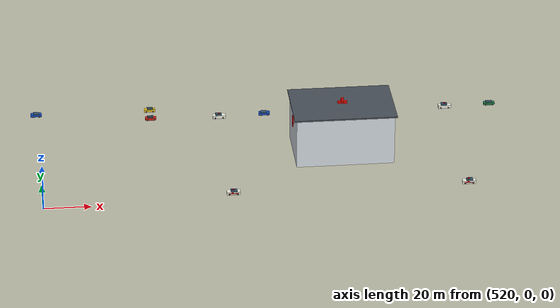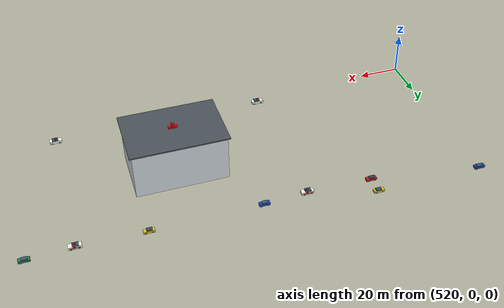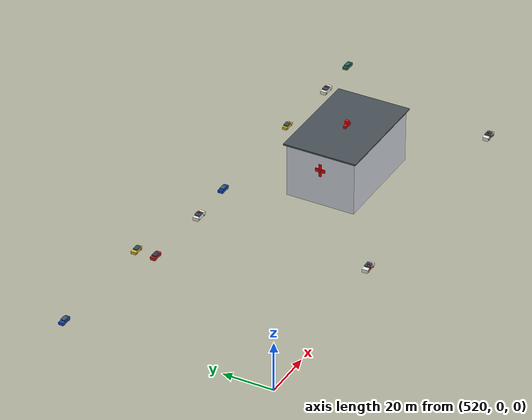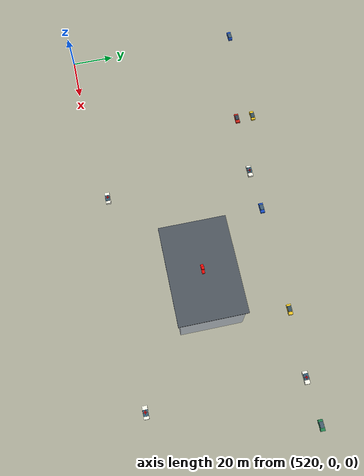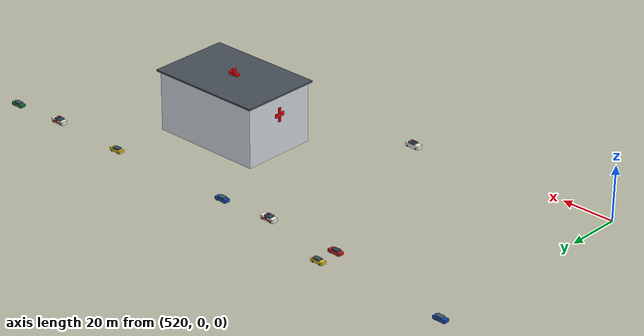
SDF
<sdf version="1.9">
 <world name="smart_city">
  <model name="apollo_district_hospital">
   <static>true</static>
   <pose>650 40 0 0 0 0</pose>
   <link name="building">
    <collision name="structure">
     <pose>0 0 11 0 0 0</pose>
     <geometry><box><size>42 28 22</size></box></geometry>
    </collision>
    <visual name="main_building">
     <pose>0 0 11 0 0 0</pose>
     <geometry><box><size>42 28 22</size></box></geometry>
     <material><ambient>0.86 0.89 0.92 1</ambient><diffuse>0.86 0.89 0.92 1</diffuse></material>
    </visual>
    <visual name="roof">
     <pose>0 0 22.3 0 0 0</pose>
     <geometry><box><size>44 30 0.6</size></box></geometry>
     <material><ambient>0.28 0.31 0.34 1</ambient><diffuse>0.28 0.31 0.34 1</diffuse></material>
    </visual>
    <visual name="west_cross_vertical">
     <pose>-21.2 0 15 0 0 0</pose>
     <geometry><box><size>0.35 1.0 5.2</size></box></geometry>
     <material><ambient>0.9 0.03 0.02 1</ambient><diffuse>0.9 0.03 0.02 1</diffuse></material>
    </visual>
    <visual name="west_cross_horizontal">
     <pose>-21.2 0 15 0 0 0</pose>
     <geometry><box><size>0.35 4.0 1.4</size></box></geometry>
     <material><ambient>0.9 0.03 0.02 1</ambient><diffuse>0.9 0.03 0.02 1</diffuse></material>
    </visual>
    <visual name="roof_cross_vertical">
     <pose>0 0 23 0 0 0</pose>
     <geometry><box><size>1.2 1.2 4.0</size></box></geometry>
     <material><ambient>0.9 0.03 0.02 1</ambient><diffuse>0.9 0.03 0.02 1</diffuse></material>
    </visual>
    <visual name="roof_cross_horizontal">
     <pose>0 0 23 0 0 0</pose>
     <geometry><box><size>4.0 1.2 1.2</size></box></geometry>
     <material><ambient>0.9 0.03 0.02 1</ambient><diffuse>0.9 0.03 0.02 1</diffuse></material>
    </visual>
   </link>
  </model>
  <model name="downtown_car_37">
   <static>true</static>
   <pose>570 76 0 0 0 0</pose>
   <link name="car">
    <visual name="body">
     <pose>0 0 0.72 0 0 0</pose>
     <geometry><box><size>4.8 2.0 1.1</size></box></geometry>
     <material><ambient>0.78 0.12 0.08 1</ambient><diffuse>0.78 0.12 0.08 1</diffuse></material>
    </visual>
    <visual name="cabin">
     <pose>-0.18 0 1.38 0 0 0</pose>
     <geometry><box><size>2.55 1.72 0.72</size></box></geometry>
     <material><ambient>0.18 0.24 0.30 1</ambient><diffuse>0.18 0.24 0.30 1</diffuse></material>
    </visual>
    <visual name="wheel_fl">
     <pose>1.45 0.96 0.36 1.5708 0 0</pose>
     <geometry><cylinder><radius>0.35</radius><length>0.18</length></cylinder></geometry>
     <material><ambient>0.04 0.04 0.045 1</ambient><diffuse>0.04 0.04 0.045 1</diffuse></material>
    </visual>
    <visual name="wheel_fr">
     <pose>1.45 -0.96 0.36 1.5708 0 0</pose>
     <geometry><cylinder><radius>0.35</radius><length>0.18</length></cylinder></geometry>
     <material><ambient>0.04 0.04 0.045 1</ambient><diffuse>0.04 0.04 0.045 1</diffuse></material>
    </visual>
    <visual name="wheel_rl">
     <pose>-1.45 0.96 0.36 1.5708 0 0</pose>
     <geometry><cylinder><radius>0.35</radius><length>0.18</length></cylinder></geometry>
     <material><ambient>0.04 0.04 0.045 1</ambient><diffuse>0.04 0.04 0.045 1</diffuse></material>
    </visual>
    <visual name="wheel_rr">
     <pose>-1.45 -0.96 0.36 1.5708 0 0</pose>
     <geometry><cylinder><radius>0.35</radius><length>0.18</length></cylinder></geometry>
     <material><ambient>0.04 0.04 0.045 1</ambient><diffuse>0.04 0.04 0.045 1</diffuse></material>
    </visual>
   </link>
  </model>
  <model name="downtown_car_38">
   <static>true</static>
   <pose>620 76 0 0 0 0</pose>
   <link name="car">
    <visual name="body">
     <pose>0 0 0.72 0 0 0</pose>
     <geometry><box><size>4.8 2.0 1.1</size></box></geometry>
     <material><ambient>0.08 0.28 0.72 1</ambient><diffuse>0.08 0.28 0.72 1</diffuse></material>
    </visual>
    <visual name="cabin">
     <pose>-0.18 0 1.38 0 0 0</pose>
     <geometry><box><size>2.55 1.72 0.72</size></box></geometry>
     <material><ambient>0.23 0.34 0.43 1</ambient><diffuse>0.23 0.34 0.43 1</diffuse></material>
    </visual>
    <visual name="wheel_fl">
     <pose>1.45 0.96 0.36 1.5708 0 0</pose>
     <geometry><cylinder><radius>0.35</radius><length>0.18</length></cylinder></geometry>
     <material><ambient>0.04 0.04 0.045 1</ambient><diffuse>0.04 0.04 0.045 1</diffuse></material>
    </visual>
    <visual name="wheel_fr">
     <pose>1.45 -0.96 0.36 1.5708 0 0</pose>
     <geometry><cylinder><radius>0.35</radius><length>0.18</length></cylinder></geometry>
     <material><ambient>0.04 0.04 0.045 1</ambient><diffuse>0.04 0.04 0.045 1</diffuse></material>
    </visual>
    <visual name="wheel_rl">
     <pose>-1.45 0.96 0.36 1.5708 0 0</pose>
     <geometry><cylinder><radius>0.35</radius><length>0.18</length></cylinder></geometry>
     <material><ambient>0.04 0.04 0.045 1</ambient><diffuse>0.04 0.04 0.045 1</diffuse></material>
    </visual>
    <visual name="wheel_rr">
     <pose>-1.45 -0.96 0.36 1.5708 0 0</pose>
     <geometry><cylinder><radius>0.35</radius><length>0.18</length></cylinder></geometry>
     <material><ambient>0.04 0.04 0.045 1</ambient><diffuse>0.04 0.04 0.045 1</diffuse></material>
    </visual>
   </link>
  </model>
  <model name="downtown_car_39">
   <static>true</static>
   <pose>670 76 0 0 0 0</pose>
   <link name="car">
    <visual name="body">
     <pose>0 0 0.72 0 0 0</pose>
     <geometry><box><size>4.8 2.0 1.1</size></box></geometry>
     <material><ambient>0.88 0.73 0.12 1</ambient><diffuse>0.88 0.73 0.12 1</diffuse></material>
    </visual>
    <visual name="cabin">
     <pose>-0.18 0 1.38 0 0 0</pose>
     <geometry><box><size>2.55 1.72 0.72</size></box></geometry>
     <material><ambient>0.20 0.30 0.35 1</ambient><diffuse>0.20 0.30 0.35 1</diffuse></material>
    </visual>
    <visual name="wheel_fl">
     <pose>1.45 0.96 0.36 1.5708 0 0</pose>
     <geometry><cylinder><radius>0.35</radius><length>0.18</length></cylinder></geometry>
     <material><ambient>0.04 0.04 0.045 1</ambient><diffuse>0.04 0.04 0.045 1</diffuse></material>
    </visual>
    <visual name="wheel_fr">
     <pose>1.45 -0.96 0.36 1.5708 0 0</pose>
     <geometry><cylinder><radius>0.35</radius><length>0.18</length></cylinder></geometry>
     <material><ambient>0.04 0.04 0.045 1</ambient><diffuse>0.04 0.04 0.045 1</diffuse></material>
    </visual>
    <visual name="wheel_rl">
     <pose>-1.45 0.96 0.36 1.5708 0 0</pose>
     <geometry><cylinder><radius>0.35</radius><length>0.18</length></cylinder></geometry>
     <material><ambient>0.04 0.04 0.045 1</ambient><diffuse>0.04 0.04 0.045 1</diffuse></material>
    </visual>
    <visual name="wheel_rr">
     <pose>-1.45 -0.96 0.36 1.5708 0 0</pose>
     <geometry><cylinder><radius>0.35</radius><length>0.18</length></cylinder></geometry>
     <material><ambient>0.04 0.04 0.045 1</ambient><diffuse>0.04 0.04 0.045 1</diffuse></material>
    </visual>
   </link>
  </model>
  <model name="downtown_car_40">
   <static>true</static>
   <pose>720 76 0 0 0 0</pose>
   <link name="car">
    <visual name="body">
     <pose>0 0 0.72 0 0 0</pose>
     <geometry><box><size>4.8 2.0 1.1</size></box></geometry>
     <material><ambient>0.12 0.47 0.28 1</ambient><diffuse>0.12 0.47 0.28 1</diffuse></material>
    </visual>
    <visual name="cabin">
     <pose>-0.18 0 1.38 0 0 0</pose>
     <geometry><box><size>2.55 1.72 0.72</size></box></geometry>
     <material><ambient>0.25 0.34 0.40 1</ambient><diffuse>0.25 0.34 0.40 1</diffuse></material>
    </visual>
    <visual name="wheel_fl">
     <pose>1.45 0.96 0.36 1.5708 0 0</pose>
     <geometry><cylinder><radius>0.35</radius><length>0.18</length></cylinder></geometry>
     <material><ambient>0.04 0.04 0.045 1</ambient><diffuse>0.04 0.04 0.045 1</diffuse></material>
    </visual>
    <visual name="wheel_fr">
     <pose>1.45 -0.96 0.36 1.5708 0 0</pose>
     <geometry><cylinder><radius>0.35</radius><length>0.18</length></cylinder></geometry>
     <material><ambient>0.04 0.04 0.045 1</ambient><diffuse>0.04 0.04 0.045 1</diffuse></material>
    </visual>
    <visual name="wheel_rl">
     <pose>-1.45 0.96 0.36 1.5708 0 0</pose>
     <geometry><cylinder><radius>0.35</radius><length>0.18</length></cylinder></geometry>
     <material><ambient>0.04 0.04 0.045 1</ambient><diffuse>0.04 0.04 0.045 1</diffuse></material>
    </visual>
    <visual name="wheel_rr">
     <pose>-1.45 -0.96 0.36 1.5708 0 0</pose>
     <geometry><cylinder><radius>0.35</radius><length>0.18</length></cylinder></geometry>
     <material><ambient>0.04 0.04 0.045 1</ambient><diffuse>0.04 0.04 0.045 1</diffuse></material>
    </visual>
   </link>
  </model>
  <model name="downtown_car_44">
   <static>true</static>
   <pose>520 84 0 0 0 3.1416</pose>
   <link name="car">
    <visual name="body">
     <pose>0 0 0.72 0 0 0</pose>
     <geometry><box><size>4.8 2.0 1.1</size></box></geometry>
     <material><ambient>0.08 0.28 0.72 1</ambient><diffuse>0.08 0.28 0.72 1</diffuse></material>
    </visual>
    <visual name="cabin">
     <pose>-0.18 0 1.38 0 0 0</pose>
     <geometry><box><size>2.55 1.72 0.72</size></box></geometry>
     <material><ambient>0.23 0.34 0.43 1</ambient><diffuse>0.23 0.34 0.43 1</diffuse></material>
    </visual>
    <visual name="wheel_fl">
     <pose>1.45 0.96 0.36 1.5708 0 0</pose>
     <geometry><cylinder><radius>0.35</radius><length>0.18</length></cylinder></geometry>
     <material><ambient>0.04 0.04 0.045 1</ambient><diffuse>0.04 0.04 0.045 1</diffuse></material>
    </visual>
    <visual name="wheel_fr">
     <pose>1.45 -0.96 0.36 1.5708 0 0</pose>
     <geometry><cylinder><radius>0.35</radius><length>0.18</length></cylinder></geometry>
     <material><ambient>0.04 0.04 0.045 1</ambient><diffuse>0.04 0.04 0.045 1</diffuse></material>
    </visual>
    <visual name="wheel_rl">
     <pose>-1.45 0.96 0.36 1.5708 0 0</pose>
     <geometry><cylinder><radius>0.35</radius><length>0.18</length></cylinder></geometry>
     <material><ambient>0.04 0.04 0.045 1</ambient><diffuse>0.04 0.04 0.045 1</diffuse></material>
    </visual>
    <visual name="wheel_rr">
     <pose>-1.45 -0.96 0.36 1.5708 0 0</pose>
     <geometry><cylinder><radius>0.35</radius><length>0.18</length></cylinder></geometry>
     <material><ambient>0.04 0.04 0.045 1</ambient><diffuse>0.04 0.04 0.045 1</diffuse></material>
    </visual>
   </link>
  </model>
  <model name="downtown_car_45">
   <static>true</static>
   <pose>570 84 0 0 0 3.1416</pose>
   <link name="car">
    <visual name="body">
     <pose>0 0 0.72 0 0 0</pose>
     <geometry><box><size>4.8 2.0 1.1</size></box></geometry>
     <material><ambient>0.88 0.73 0.12 1</ambient><diffuse>0.88 0.73 0.12 1</diffuse></material>
    </visual>
    <visual name="cabin">
     <pose>-0.18 0 1.38 0 0 0</pose>
     <geometry><box><size>2.55 1.72 0.72</size></box></geometry>
     <material><ambient>0.20 0.30 0.35 1</ambient><diffuse>0.20 0.30 0.35 1</diffuse></material>
    </visual>
    <visual name="wheel_fl">
     <pose>1.45 0.96 0.36 1.5708 0 0</pose>
     <geometry><cylinder><radius>0.35</radius><length>0.18</length></cylinder></geometry>
     <material><ambient>0.04 0.04 0.045 1</ambient><diffuse>0.04 0.04 0.045 1</diffuse></material>
    </visual>
    <visual name="wheel_fr">
     <pose>1.45 -0.96 0.36 1.5708 0 0</pose>
     <geometry><cylinder><radius>0.35</radius><length>0.18</length></cylinder></geometry>
     <material><ambient>0.04 0.04 0.045 1</ambient><diffuse>0.04 0.04 0.045 1</diffuse></material>
    </visual>
    <visual name="wheel_rl">
     <pose>-1.45 0.96 0.36 1.5708 0 0</pose>
     <geometry><cylinder><radius>0.35</radius><length>0.18</length></cylinder></geometry>
     <material><ambient>0.04 0.04 0.045 1</ambient><diffuse>0.04 0.04 0.045 1</diffuse></material>
    </visual>
    <visual name="wheel_rr">
     <pose>-1.45 -0.96 0.36 1.5708 0 0</pose>
     <geometry><cylinder><radius>0.35</radius><length>0.18</length></cylinder></geometry>
     <material><ambient>0.04 0.04 0.045 1</ambient><diffuse>0.04 0.04 0.045 1</diffuse></material>
    </visual>
   </link>
  </model>
  <model name="district_ambulance_07">
   <static>true</static>
   <pose>600 5 0 0 0 3.1416</pose>
   <link name="ambulance">
    <visual name="body">
     <pose>0 0 0.82 0 0 0</pose>
     <geometry><box><size>5.6 2.25 1.4</size></box></geometry>
     <material><ambient>0.94 0.94 0.88 1</ambient><diffuse>0.94 0.94 0.88 1</diffuse></material>
    </visual>
    <visual name="medical_cabin">
     <pose>-0.25 0 1.62 0 0 0</pose>
     <geometry><box><size>2.7 2.12 0.86</size></box></geometry>
     <material><ambient>0.20 0.34 0.42 1</ambient><diffuse>0.20 0.34 0.42 1</diffuse></material>
    </visual>
    <visual name="red_side_stripe">
     <pose>0 1.14 0.76 0 0 0</pose>
     <geometry><box><size>4.4 0.05 0.26</size></box></geometry>
     <material><ambient>0.86 0.02 0.02 1</ambient><diffuse>0.86 0.02 0.02 1</diffuse></material>
    </visual>
    <visual name="red_side_cross_v">
     <pose>0.35 1.18 1.18 0 0 0</pose>
     <geometry><box><size>0.36 0.08 1.0</size></box></geometry>
     <material><ambient>0.9 0.02 0.02 1</ambient><diffuse>0.9 0.02 0.02 1</diffuse></material>
    </visual>
    <visual name="red_side_cross_h">
     <pose>0.35 1.18 1.18 0 0 0</pose>
     <geometry><box><size>1.0 0.08 0.36</size></box></geometry>
     <material><ambient>0.9 0.02 0.02 1</ambient><diffuse>0.9 0.02 0.02 1</diffuse></material>
    </visual>
    <visual name="lightbar">
     <pose>0 0 2.1 0 0 0</pose>
     <geometry><box><size>1.0 0.42 0.18</size></box></geometry>
     <material>
      <ambient>0.02 0.15 0.95 1</ambient>
      <diffuse>0.02 0.15 0.95 1</diffuse>
      <emissive>0.02 0.08 0.65 1</emissive>
     </material>
    </visual>
    <visual name="roof_cross_long">
     <pose>0 0 2.22 0 0 0</pose>
     <geometry><box><size>1.5 0.34 0.08</size></box></geometry>
     <material><ambient>0.9 0.02 0.02 1</ambient><diffuse>0.9 0.02 0.02 1</diffuse></material>
    </visual>
    <visual name="roof_cross_wide">
     <pose>0 0 2.22 0 0 0</pose>
     <geometry><box><size>0.34 1.5 0.08</size></box></geometry>
     <material><ambient>0.9 0.02 0.02 1</ambient><diffuse>0.9 0.02 0.02 1</diffuse></material>
    </visual>
    <visual name="wheel_fl">
     <pose>1.72 1.08 0.36 1.5708 0 0</pose>
     <geometry><cylinder><radius>0.36</radius><length>0.18</length></cylinder></geometry>
     <material><ambient>0.04 0.04 0.045 1</ambient><diffuse>0.04 0.04 0.045 1</diffuse></material>
    </visual>
    <visual name="wheel_fr">
     <pose>1.72 -1.08 0.36 1.5708 0 0</pose>
     <geometry><cylinder><radius>0.36</radius><length>0.18</length></cylinder></geometry>
     <material><ambient>0.04 0.04 0.045 1</ambient><diffuse>0.04 0.04 0.045 1</diffuse></material>
    </visual>
    <visual name="wheel_rl">
     <pose>-1.72 1.08 0.36 1.5708 0 0</pose>
     <geometry><cylinder><radius>0.36</radius><length>0.18</length></cylinder></geometry>
     <material><ambient>0.04 0.04 0.045 1</ambient><diffuse>0.04 0.04 0.045 1</diffuse></material>
    </visual>
    <visual name="wheel_rr">
     <pose>-1.72 -1.08 0.36 1.5708 0 0</pose>
     <geometry><cylinder><radius>0.36</radius><length>0.18</length></cylinder></geometry>
     <material><ambient>0.04 0.04 0.045 1</ambient><diffuse>0.04 0.04 0.045 1</diffuse></material>
    </visual>
   </link>
  </model>
  <model name="district_ambulance_08">
   <static>true</static>
   <pose>700 5 0 0 0 3.1416</pose>
   <link name="ambulance">
    <visual name="body">
     <pose>0 0 0.82 0 0 0</pose>
     <geometry><box><size>5.6 2.25 1.4</size></box></geometry>
     <material><ambient>0.94 0.94 0.88 1</ambient><diffuse>0.94 0.94 0.88 1</diffuse></material>
    </visual>
    <visual name="medical_cabin">
     <pose>-0.25 0 1.62 0 0 0</pose>
     <geometry><box><size>2.7 2.12 0.86</size></box></geometry>
     <material><ambient>0.20 0.34 0.42 1</ambient><diffuse>0.20 0.34 0.42 1</diffuse></material>
    </visual>
    <visual name="red_side_stripe">
     <pose>0 1.14 0.76 0 0 0</pose>
     <geometry><box><size>4.4 0.05 0.26</size></box></geometry>
     <material><ambient>0.86 0.02 0.02 1</ambient><diffuse>0.86 0.02 0.02 1</diffuse></material>
    </visual>
    <visual name="red_side_cross_v">
     <pose>0.35 1.18 1.18 0 0 0</pose>
     <geometry><box><size>0.36 0.08 1.0</size></box></geometry>
     <material><ambient>0.9 0.02 0.02 1</ambient><diffuse>0.9 0.02 0.02 1</diffuse></material>
    </visual>
    <visual name="red_side_cross_h">
     <pose>0.35 1.18 1.18 0 0 0</pose>
     <geometry><box><size>1.0 0.08 0.36</size></box></geometry>
     <material><ambient>0.9 0.02 0.02 1</ambient><diffuse>0.9 0.02 0.02 1</diffuse></material>
    </visual>
    <visual name="lightbar">
     <pose>0 0 2.1 0 0 0</pose>
     <geometry><box><size>1.0 0.42 0.18</size></box></geometry>
     <material>
      <ambient>0.02 0.15 0.95 1</ambient>
      <diffuse>0.02 0.15 0.95 1</diffuse>
      <emissive>0.02 0.08 0.65 1</emissive>
     </material>
    </visual>
    <visual name="roof_cross_long">
     <pose>0 0 2.22 0 0 0</pose>
     <geometry><box><size>1.5 0.34 0.08</size></box></geometry>
     <material><ambient>0.9 0.02 0.02 1</ambient><diffuse>0.9 0.02 0.02 1</diffuse></material>
    </visual>
    <visual name="roof_cross_wide">
     <pose>0 0 2.22 0 0 0</pose>
     <geometry><box><size>0.34 1.5 0.08</size></box></geometry>
     <material><ambient>0.9 0.02 0.02 1</ambient><diffuse>0.9 0.02 0.02 1</diffuse></material>
    </visual>
    <visual name="wheel_fl">
     <pose>1.72 1.08 0.36 1.5708 0 0</pose>
     <geometry><cylinder><radius>0.36</radius><length>0.18</length></cylinder></geometry>
     <material><ambient>0.04 0.04 0.045 1</ambient><diffuse>0.04 0.04 0.045 1</diffuse></material>
    </visual>
    <visual name="wheel_fr">
     <pose>1.72 -1.08 0.36 1.5708 0 0</pose>
     <geometry><cylinder><radius>0.36</radius><length>0.18</length></cylinder></geometry>
     <material><ambient>0.04 0.04 0.045 1</ambient><diffuse>0.04 0.04 0.045 1</diffuse></material>
    </visual>
    <visual name="wheel_rl">
     <pose>-1.72 1.08 0.36 1.5708 0 0</pose>
     <geometry><cylinder><radius>0.36</radius><length>0.18</length></cylinder></geometry>
     <material><ambient>0.04 0.04 0.045 1</ambient><diffuse>0.04 0.04 0.045 1</diffuse></material>
    </visual>
    <visual name="wheel_rr">
     <pose>-1.72 -1.08 0.36 1.5708 0 0</pose>
     <geometry><cylinder><radius>0.36</radius><length>0.18</length></cylinder></geometry>
     <material><ambient>0.04 0.04 0.045 1</ambient><diffuse>0.04 0.04 0.045 1</diffuse></material>
    </visual>
   </link>
  </model>
  <model name="district_ambulance_11">
   <static>true</static>
   <pose>600 75 0 0 0 0</pose>
   <link name="ambulance">
    <visual name="body">
     <pose>0 0 0.82 0 0 0</pose>
     <geometry><box><size>5.6 2.25 1.4</size></box></geometry>
     <material><ambient>0.94 0.94 0.88 1</ambient><diffuse>0.94 0.94 0.88 1</diffuse></material>
    </visual>
    <visual name="medical_cabin">
     <pose>-0.25 0 1.62 0 0 0</pose>
     <geometry><box><size>2.7 2.12 0.86</size></box></geometry>
     <material><ambient>0.20 0.34 0.42 1</ambient><diffuse>0.20 0.34 0.42 1</diffuse></material>
    </visual>
    <visual name="red_side_stripe">
     <pose>0 1.14 0.76 0 0 0</pose>
     <geometry><box><size>4.4 0.05 0.26</size></box></geometry>
     <material><ambient>0.86 0.02 0.02 1</ambient><diffuse>0.86 0.02 0.02 1</diffuse></material>
    </visual>
    <visual name="red_side_cross_v">
     <pose>0.35 1.18 1.18 0 0 0</pose>
     <geometry><box><size>0.36 0.08 1.0</size></box></geometry>
     <material><ambient>0.9 0.02 0.02 1</ambient><diffuse>0.9 0.02 0.02 1</diffuse></material>
    </visual>
    <visual name="red_side_cross_h">
     <pose>0.35 1.18 1.18 0 0 0</pose>
     <geometry><box><size>1.0 0.08 0.36</size></box></geometry>
     <material><ambient>0.9 0.02 0.02 1</ambient><diffuse>0.9 0.02 0.02 1</diffuse></material>
    </visual>
    <visual name="lightbar">
     <pose>0 0 2.1 0 0 0</pose>
     <geometry><box><size>1.0 0.42 0.18</size></box></geometry>
     <material>
      <ambient>0.02 0.15 0.95 1</ambient>
      <diffuse>0.02 0.15 0.95 1</diffuse>
      <emissive>0.02 0.08 0.65 1</emissive>
     </material>
    </visual>
    <visual name="roof_cross_long">
     <pose>0 0 2.22 0 0 0</pose>
     <geometry><box><size>1.5 0.34 0.08</size></box></geometry>
     <material><ambient>0.9 0.02 0.02 1</ambient><diffuse>0.9 0.02 0.02 1</diffuse></material>
    </visual>
    <visual name="roof_cross_wide">
     <pose>0 0 2.22 0 0 0</pose>
     <geometry><box><size>0.34 1.5 0.08</size></box></geometry>
     <material><ambient>0.9 0.02 0.02 1</ambient><diffuse>0.9 0.02 0.02 1</diffuse></material>
    </visual>
    <visual name="wheel_fl">
     <pose>1.72 1.08 0.36 1.5708 0 0</pose>
     <geometry><cylinder><radius>0.36</radius><length>0.18</length></cylinder></geometry>
     <material><ambient>0.04 0.04 0.045 1</ambient><diffuse>0.04 0.04 0.045 1</diffuse></material>
    </visual>
    <visual name="wheel_fr">
     <pose>1.72 -1.08 0.36 1.5708 0 0</pose>
     <geometry><cylinder><radius>0.36</radius><length>0.18</length></cylinder></geometry>
     <material><ambient>0.04 0.04 0.045 1</ambient><diffuse>0.04 0.04 0.045 1</diffuse></material>
    </visual>
    <visual name="wheel_rl">
     <pose>-1.72 1.08 0.36 1.5708 0 0</pose>
     <geometry><cylinder><radius>0.36</radius><length>0.18</length></cylinder></geometry>
     <material><ambient>0.04 0.04 0.045 1</ambient><diffuse>0.04 0.04 0.045 1</diffuse></material>
    </visual>
    <visual name="wheel_rr">
     <pose>-1.72 -1.08 0.36 1.5708 0 0</pose>
     <geometry><cylinder><radius>0.36</radius><length>0.18</length></cylinder></geometry>
     <material><ambient>0.04 0.04 0.045 1</ambient><diffuse>0.04 0.04 0.045 1</diffuse></material>
    </visual>
   </link>
  </model>
  <model name="district_ambulance_12">
   <static>true</static>
   <pose>700 75 0 0 0 0</pose>
   <link name="ambulance">
    <visual name="body">
     <pose>0 0 0.82 0 0 0</pose>
     <geometry><box><size>5.6 2.25 1.4</size></box></geometry>
     <material><ambient>0.94 0.94 0.88 1</ambient><diffuse>0.94 0.94 0.88 1</diffuse></material>
    </visual>
    <visual name="medical_cabin">
     <pose>-0.25 0 1.62 0 0 0</pose>
     <geometry><box><size>2.7 2.12 0.86</size></box></geometry>
     <material><ambient>0.20 0.34 0.42 1</ambient><diffuse>0.20 0.34 0.42 1</diffuse></material>
    </visual>
    <visual name="red_side_stripe">
     <pose>0 1.14 0.76 0 0 0</pose>
     <geometry><box><size>4.4 0.05 0.26</size></box></geometry>
     <material><ambient>0.86 0.02 0.02 1</ambient><diffuse>0.86 0.02 0.02 1</diffuse></material>
    </visual>
    <visual name="red_side_cross_v">
     <pose>0.35 1.18 1.18 0 0 0</pose>
     <geometry><box><size>0.36 0.08 1.0</size></box></geometry>
     <material><ambient>0.9 0.02 0.02 1</ambient><diffuse>0.9 0.02 0.02 1</diffuse></material>
    </visual>
    <visual name="red_side_cross_h">
     <pose>0.35 1.18 1.18 0 0 0</pose>
     <geometry><box><size>1.0 0.08 0.36</size></box></geometry>
     <material><ambient>0.9 0.02 0.02 1</ambient><diffuse>0.9 0.02 0.02 1</diffuse></material>
    </visual>
    <visual name="lightbar">
     <pose>0 0 2.1 0 0 0</pose>
     <geometry><box><size>1.0 0.42 0.18</size></box></geometry>
     <material>
      <ambient>0.02 0.15 0.95 1</ambient>
      <diffuse>0.02 0.15 0.95 1</diffuse>
      <emissive>0.02 0.08 0.65 1</emissive>
     </material>
    </visual>
    <visual name="roof_cross_long">
     <pose>0 0 2.22 0 0 0</pose>
     <geometry><box><size>1.5 0.34 0.08</size></box></geometry>
     <material><ambient>0.9 0.02 0.02 1</ambient><diffuse>0.9 0.02 0.02 1</diffuse></material>
    </visual>
    <visual name="roof_cross_wide">
     <pose>0 0 2.22 0 0 0</pose>
     <geometry><box><size>0.34 1.5 0.08</size></box></geometry>
     <material><ambient>0.9 0.02 0.02 1</ambient><diffuse>0.9 0.02 0.02 1</diffuse></material>
    </visual>
    <visual name="wheel_fl">
     <pose>1.72 1.08 0.36 1.5708 0 0</pose>
     <geometry><cylinder><radius>0.36</radius><length>0.18</length></cylinder></geometry>
     <material><ambient>0.04 0.04 0.045 1</ambient><diffuse>0.04 0.04 0.045 1</diffuse></material>
    </visual>
    <visual name="wheel_fr">
     <pose>1.72 -1.08 0.36 1.5708 0 0</pose>
     <geometry><cylinder><radius>0.36</radius><length>0.18</length></cylinder></geometry>
     <material><ambient>0.04 0.04 0.045 1</ambient><diffuse>0.04 0.04 0.045 1</diffuse></material>
    </visual>
    <visual name="wheel_rl">
     <pose>-1.72 1.08 0.36 1.5708 0 0</pose>
     <geometry><cylinder><radius>0.36</radius><length>0.18</length></cylinder></geometry>
     <material><ambient>0.04 0.04 0.045 1</ambient><diffuse>0.04 0.04 0.045 1</diffuse></material>
    </visual>
    <visual name="wheel_rr">
     <pose>-1.72 -1.08 0.36 1.5708 0 0</pose>
     <geometry><cylinder><radius>0.36</radius><length>0.18</length></cylinder></geometry>
     <material><ambient>0.04 0.04 0.045 1</ambient><diffuse>0.04 0.04 0.045 1</diffuse></material>
    </visual>
   </link>
  </model>
 </world>
</sdf>
